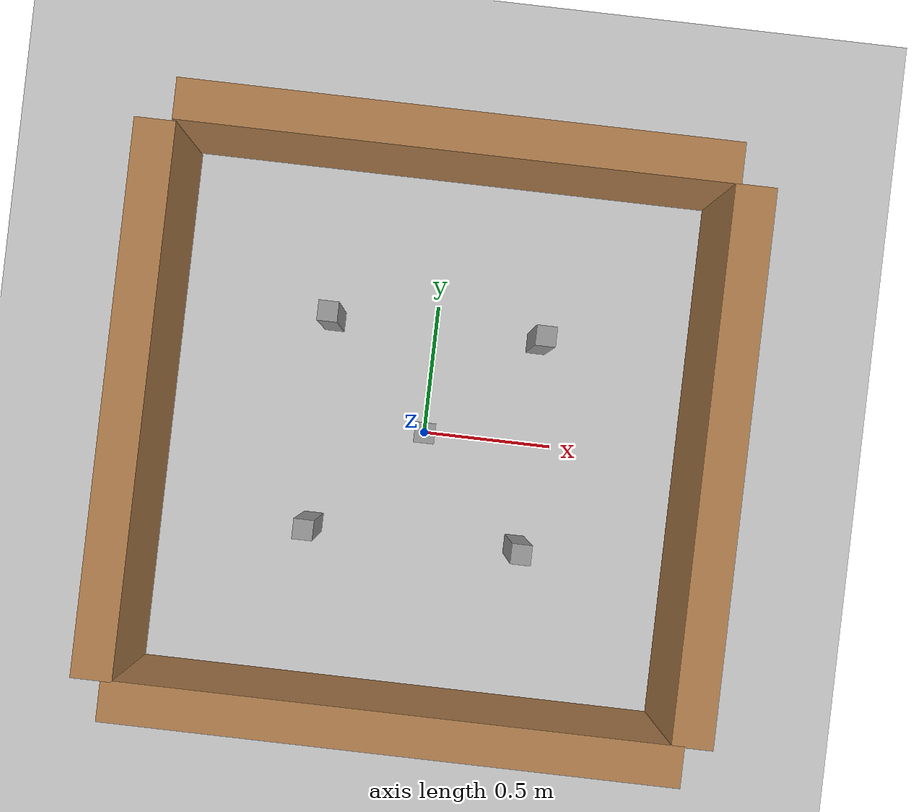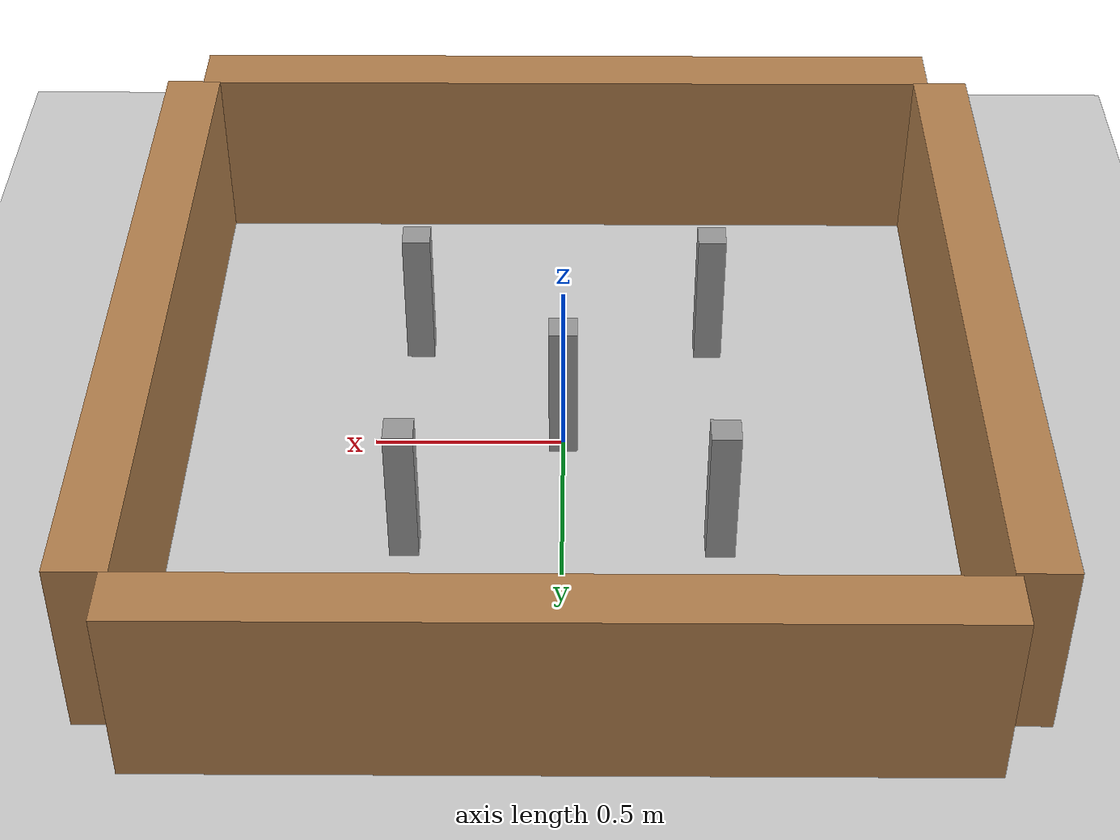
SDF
<sdf version="1.6">
 <world name="default">
  <light name="sun" type="directional">
   <pose>0 0 10 0 -0 0</pose>
   <diffuse>0.8 0.8 0.8 1</diffuse>
   <specular>0.2 0.2 0.2 1</specular>
   <attenuation>
    <range>1000</range>
    <constant>0.9</constant>
    <linear>0.01</linear>
    <quadratic>0.001</quadratic>
   </attenuation>
   <direction>-0.5 0.1 -0.9</direction>
  </light>
  <model name="ground_plane">
   <static>1</static>
   <link name="link">
    <collision name="collision">
     <geometry><plane><normal>0 0 1</normal><size>100 100</size></plane></geometry>
     <surface>
      <contact><collide_bitmask>65535</collide_bitmask></contact>
      <friction><ode><mu>100</mu><mu2>50</mu2></ode></friction>
     </surface>
    </collision>
    <visual name="visual">
     <cast_shadows>0</cast_shadows>
     <geometry><plane><normal>0 0 1</normal><size>100 100</size></plane></geometry>
     <material>
      <script><uri>file://media/materials/scripts/gazebo.material</uri><name>Gazebo/Grey</name></script>
     </material>
    </visual>
   </link>
  </model>
  <gravity>0 0 -9.8</gravity>
  <magnetic_field>6e-06 2.3e-05 -4.2e-05</magnetic_field>
  <atmosphere type="adiabatic"/>
  <physics name="default_physics" default="0" type="ode">
   <max_step_size>0.001</max_step_size>
   <real_time_factor>1</real_time_factor>
   <real_time_update_rate>1000</real_time_update_rate>
  </physics>
  <scene><ambient>0.4 0.4 0.4 1</ambient><background>0.7 0.7 0.7 1</background><shadows>1</shadows></scene>
  <audio><device>default</device></audio>
  <spherical_coordinates>
   <surface_model>EARTH_WGS84</surface_model>
   <latitude_deg>0</latitude_deg>
   <longitude_deg>0</longitude_deg>
   <elevation>0</elevation>
   <heading_deg>0</heading_deg>
  </spherical_coordinates>
  <model name="cuboid_obstacle">
   <link name="link">
    <inertial>
     <mass>1</mass>
     <inertia>
      <ixx>0.166667</ixx>
      <ixy>0</ixy>
      <ixz>0</ixz>
      <iyy>0.166667</iyy>
      <iyz>0</iyz>
      <izz>0.166667</izz>
     </inertia>
    </inertial>
    <pose>-0 -0 -0.3 0 -0 0</pose>
    <visual name="visual">
     <geometry><box><size>0.075 0.075 0.395</size></box></geometry>
     <material>
      <script><name>Gazebo/Grey</name><uri>file://media/materials/scripts/gazebo.material</uri></script>
      <shader type="vertex"><normal_map>__default__</normal_map></shader>
      <ambient>0.3 0.3 0.3 1</ambient>
      <diffuse>0.7 0.7 0.7 1</diffuse>
      <specular>0.01 0.01 0.01 1</specular>
      <emissive>0 0 0 1</emissive>
     </material>
    </visual>
    <collision name="collision">
     <geometry><box><size>0.075 0.075 0.395</size></box></geometry>
     <surface>
      <friction>
       <ode><mu>1</mu><mu2>1</mu2><fdir1>0 0 0</fdir1><slip1>0</slip1><slip2>0</slip2></ode>
       <torsional>
        <coefficient>1</coefficient>
        <patch_radius>0</patch_radius>
        <surface_radius>0</surface_radius>
        <use_patch_radius>1</use_patch_radius>
        <ode><slip>0</slip></ode>
       </torsional>
      </friction>
      <bounce><restitution_coefficient>0</restitution_coefficient><threshold>1e+06</threshold></bounce>
      <contact>
       <collide_without_contact>0</collide_without_contact>
       <collide_without_contact_bitmask>1</collide_without_contact_bitmask>
       <collide_bitmask>1</collide_bitmask>
       <ode>
        <soft_cfm>0</soft_cfm>
        <soft_erp>0.2</soft_erp>
        <kp>1e+13</kp>
        <kd>1</kd>
        <max_vel>0.01</max_vel>
        <min_depth>0</min_depth>
       </ode>
       <bullet>
        <split_impulse>1</split_impulse>
        <split_impulse_penetration_threshold>-0.01</split_impulse_penetration_threshold>
        <soft_cfm>0</soft_cfm>
        <soft_erp>0.2</soft_erp>
        <kp>1e+13</kp>
        <kd>1</kd>
       </bullet>
      </contact>
     </surface>
    </collision>
   </link>
   <link name="link_clone_1">
    <inertial>
     <mass>1</mass>
     <inertia>
      <ixx>0.166667</ixx>
      <ixy>0</ixy>
      <ixz>0</ixz>
      <iyy>0.166667</iyy>
      <iyz>0</iyz>
      <izz>0.166667</izz>
     </inertia>
    </inertial>
    <pose>-0.4 0.4 -0.299991 1e-05 -0 0</pose>
    <visual name="visual">
     <geometry><box><size>0.075 0.075 0.395</size></box></geometry>
     <material>
      <script><name>Gazebo/Grey</name><uri>file://media/materials/scripts/gazebo.material</uri></script>
      <shader type="vertex"><normal_map>__default__</normal_map></shader>
      <ambient>0.3 0.3 0.3 1</ambient>
      <diffuse>0.7 0.7 0.7 1</diffuse>
      <specular>0.01 0.01 0.01 1</specular>
      <emissive>0 0 0 1</emissive>
     </material>
    </visual>
    <collision name="collision">
     <geometry><box><size>0.075 0.075 0.395</size></box></geometry>
     <surface>
      <friction>
       <ode><mu>1</mu><mu2>1</mu2><fdir1>0 0 0</fdir1><slip1>0</slip1><slip2>0</slip2></ode>
       <torsional>
        <coefficient>1</coefficient>
        <patch_radius>0</patch_radius>
        <surface_radius>0</surface_radius>
        <use_patch_radius>1</use_patch_radius>
        <ode><slip>0</slip></ode>
       </torsional>
      </friction>
      <bounce><restitution_coefficient>0</restitution_coefficient><threshold>1e+06</threshold></bounce>
      <contact>
       <collide_without_contact>0</collide_without_contact>
       <collide_without_contact_bitmask>1</collide_without_contact_bitmask>
       <collide_bitmask>1</collide_bitmask>
       <ode>
        <soft_cfm>0</soft_cfm>
        <soft_erp>0.2</soft_erp>
        <kp>1e+13</kp>
        <kd>1</kd>
        <max_vel>0.01</max_vel>
        <min_depth>0</min_depth>
       </ode>
       <bullet>
        <split_impulse>1</split_impulse>
        <split_impulse_penetration_threshold>-0.01</split_impulse_penetration_threshold>
        <soft_cfm>0</soft_cfm>
        <soft_erp>0.2</soft_erp>
        <kp>1e+13</kp>
        <kd>1</kd>
       </bullet>
      </contact>
     </surface>
    </collision>
   </link>
   <link name="link_clone_1_clone">
    <inertial>
     <mass>1</mass>
     <inertia>
      <ixx>0.166667</ixx>
      <ixy>0</ixy>
      <ixz>0</ixz>
      <iyy>0.166667</iyy>
      <iyz>0</iyz>
      <izz>0.166667</izz>
     </inertia>
    </inertial>
    <pose>-0.4 -0.4 -0.299998 2e-05 -0 0</pose>
    <visual name="visual">
     <geometry><box><size>0.075 0.075 0.395</size></box></geometry>
     <material>
      <script><name>Gazebo/Grey</name><uri>file://media/materials/scripts/gazebo.material</uri></script>
      <shader type="vertex"><normal_map>__default__</normal_map></shader>
      <ambient>0.3 0.3 0.3 1</ambient>
      <diffuse>0.7 0.7 0.7 1</diffuse>
      <specular>0.01 0.01 0.01 1</specular>
      <emissive>0 0 0 1</emissive>
     </material>
    </visual>
    <collision name="collision">
     <geometry><box><size>0.075 0.075 0.395</size></box></geometry>
     <surface>
      <friction>
       <ode><mu>1</mu><mu2>1</mu2><fdir1>0 0 0</fdir1><slip1>0</slip1><slip2>0</slip2></ode>
       <torsional>
        <coefficient>1</coefficient>
        <patch_radius>0</patch_radius>
        <surface_radius>0</surface_radius>
        <use_patch_radius>1</use_patch_radius>
        <ode><slip>0</slip></ode>
       </torsional>
      </friction>
      <bounce><restitution_coefficient>0</restitution_coefficient><threshold>1e+06</threshold></bounce>
      <contact>
       <collide_without_contact>0</collide_without_contact>
       <collide_without_contact_bitmask>1</collide_without_contact_bitmask>
       <collide_bitmask>1</collide_bitmask>
       <ode>
        <soft_cfm>0</soft_cfm>
        <soft_erp>0.2</soft_erp>
        <kp>1e+13</kp>
        <kd>1</kd>
        <max_vel>0.01</max_vel>
        <min_depth>0</min_depth>
       </ode>
       <bullet>
        <split_impulse>1</split_impulse>
        <split_impulse_penetration_threshold>-0.01</split_impulse_penetration_threshold>
        <soft_cfm>0</soft_cfm>
        <soft_erp>0.2</soft_erp>
        <kp>1e+13</kp>
        <kd>1</kd>
       </bullet>
      </contact>
     </surface>
    </collision>
   </link>
   <link name="link_clone_1_clone_0">
    <inertial>
     <mass>1</mass>
     <inertia>
      <ixx>0.166667</ixx>
      <ixy>0</ixy>
      <ixz>0</ixz>
      <iyy>0.166667</iyy>
      <iyz>0</iyz>
      <izz>0.166667</izz>
     </inertia>
    </inertial>
    <pose>0.4 -0.4 -0.299995 2e-05 -0 0</pose>
    <visual name="visual">
     <geometry><box><size>0.075 0.075 0.395</size></box></geometry>
     <material>
      <script><name>Gazebo/Grey</name><uri>file://media/materials/scripts/gazebo.material</uri></script>
      <shader type="vertex"><normal_map>__default__</normal_map></shader>
      <ambient>0.3 0.3 0.3 1</ambient>
      <diffuse>0.7 0.7 0.7 1</diffuse>
      <specular>0.01 0.01 0.01 1</specular>
      <emissive>0 0 0 1</emissive>
     </material>
    </visual>
    <collision name="collision">
     <geometry><box><size>0.075 0.075 0.395</size></box></geometry>
     <surface>
      <friction>
       <ode><mu>1</mu><mu2>1</mu2><fdir1>0 0 0</fdir1><slip1>0</slip1><slip2>0</slip2></ode>
       <torsional>
        <coefficient>1</coefficient>
        <patch_radius>0</patch_radius>
        <surface_radius>0</surface_radius>
        <use_patch_radius>1</use_patch_radius>
        <ode><slip>0</slip></ode>
       </torsional>
      </friction>
      <bounce><restitution_coefficient>0</restitution_coefficient><threshold>1e+06</threshold></bounce>
      <contact>
       <collide_without_contact>0</collide_without_contact>
       <collide_without_contact_bitmask>1</collide_without_contact_bitmask>
       <collide_bitmask>1</collide_bitmask>
       <ode>
        <soft_cfm>0</soft_cfm>
        <soft_erp>0.2</soft_erp>
        <kp>1e+13</kp>
        <kd>1</kd>
        <max_vel>0.01</max_vel>
        <min_depth>0</min_depth>
       </ode>
       <bullet>
        <split_impulse>1</split_impulse>
        <split_impulse_penetration_threshold>-0.01</split_impulse_penetration_threshold>
        <soft_cfm>0</soft_cfm>
        <soft_erp>0.2</soft_erp>
        <kp>1e+13</kp>
        <kd>1</kd>
       </bullet>
      </contact>
     </surface>
    </collision>
   </link>
   <link name="link_clone_1_clone_1">
    <inertial>
     <mass>1</mass>
     <inertia>
      <ixx>0.166667</ixx>
      <ixy>0</ixy>
      <ixz>0</ixz>
      <iyy>0.166667</iyy>
      <iyz>0</iyz>
      <izz>0.166667</izz>
     </inertia>
    </inertial>
    <pose>0.4 0.4 -0.299986 2e-05 -0 0</pose>
    <visual name="visual">
     <geometry><box><size>0.075 0.075 0.395</size></box></geometry>
     <material>
      <script><name>Gazebo/Grey</name><uri>file://media/materials/scripts/gazebo.material</uri></script>
      <shader type="vertex"><normal_map>__default__</normal_map></shader>
      <ambient>0.3 0.3 0.3 1</ambient>
      <diffuse>0.7 0.7 0.7 1</diffuse>
      <specular>0.01 0.01 0.01 1</specular>
      <emissive>0 0 0 1</emissive>
     </material>
    </visual>
    <collision name="collision">
     <geometry><box><size>0.075 0.075 0.395</size></box></geometry>
     <surface>
      <friction>
       <ode><mu>1</mu><mu2>1</mu2><fdir1>0 0 0</fdir1><slip1>0</slip1><slip2>0</slip2></ode>
       <torsional>
        <coefficient>1</coefficient>
        <patch_radius>0</patch_radius>
        <surface_radius>0</surface_radius>
        <use_patch_radius>1</use_patch_radius>
        <ode><slip>0</slip></ode>
       </torsional>
      </friction>
      <bounce><restitution_coefficient>0</restitution_coefficient><threshold>1e+06</threshold></bounce>
      <contact>
       <collide_without_contact>0</collide_without_contact>
       <collide_without_contact_bitmask>1</collide_without_contact_bitmask>
       <collide_bitmask>1</collide_bitmask>
       <ode>
        <soft_cfm>0</soft_cfm>
        <soft_erp>0.2</soft_erp>
        <kp>1e+13</kp>
        <kd>1</kd>
        <max_vel>0.01</max_vel>
        <min_depth>0</min_depth>
       </ode>
       <bullet>
        <split_impulse>1</split_impulse>
        <split_impulse_penetration_threshold>-0.01</split_impulse_penetration_threshold>
        <soft_cfm>0</soft_cfm>
        <soft_erp>0.2</soft_erp>
        <kp>1e+13</kp>
        <kd>1</kd>
       </bullet>
      </contact>
     </surface>
    </collision>
   </link>
   <static>0</static>
   <pose>0 5e-06 0.499995 -1e-05 0 0</pose>
  </model>
  <model name="turtlebot3_square_smaller">
   <link name="Wall_0">
    <pose>0 1.07852 0 0 -0 0</pose>
    <inertial>
     <mass>0.508842</mass>
     <inertia>
      <ixx>0.0115549</ixx>
      <ixy>0</ixy>
      <ixz>0</ixz>
      <iyy>0.186256</iyy>
      <iyz>0</iyz>
      <izz>0.176609</izz>
     </inertia>
    </inertial>
    <visual name="Wall_0_Visual">
     <pose>0 0 0.25 0 -0 0</pose>
     <geometry><box><size>2.0353 0.15 0.5</size></box></geometry>
     <material>
      <script><uri>file://media/materials/scripts/gazebo.material</uri><name>Gazebo/Wood</name></script>
      <ambient>1 1 1 1</ambient>
      <shader type="vertex"><normal_map>__default__</normal_map></shader>
      <diffuse>1 1 1 1</diffuse>
      <specular>0.2 0.2 0.2 1</specular>
      <emissive>0 0 0 1</emissive>
     </material>
    </visual>
    <collision name="Wall_0_Collision">
     <pose>0 0 0.25 0 -0 0</pose>
     <geometry><box><size>2.0353 0.15 0.5</size></box></geometry>
     <surface>
      <friction>
       <ode><mu>1</mu><mu2>1</mu2><fdir1>0 0 0</fdir1><slip1>0</slip1><slip2>0</slip2></ode>
       <torsional>
        <coefficient>1</coefficient>
        <patch_radius>0</patch_radius>
        <surface_radius>0</surface_radius>
        <use_patch_radius>1</use_patch_radius>
        <ode><slip>0</slip></ode>
       </torsional>
      </friction>
      <bounce><restitution_coefficient>0</restitution_coefficient><threshold>1e+06</threshold></bounce>
      <contact>
       <collide_without_contact>0</collide_without_contact>
       <collide_without_contact_bitmask>1</collide_without_contact_bitmask>
       <collide_bitmask>1</collide_bitmask>
       <ode>
        <soft_cfm>0</soft_cfm>
        <soft_erp>0.2</soft_erp>
        <kp>1e+13</kp>
        <kd>1</kd>
        <max_vel>0.01</max_vel>
        <min_depth>0</min_depth>
       </ode>
       <bullet>
        <split_impulse>1</split_impulse>
        <split_impulse_penetration_threshold>-0.01</split_impulse_penetration_threshold>
        <soft_cfm>0</soft_cfm>
        <soft_erp>0.2</soft_erp>
        <kp>1e+13</kp>
        <kd>1</kd>
       </bullet>
      </contact>
     </surface>
    </collision>
   </link>
   <link name="Wall_2">
    <pose>-1.07729 -0.00439 0 0 0 -1.5708</pose>
    <inertial>
     <mass>0.500872</mass>
     <inertia>
      <ixx>0.011374</ixx>
      <ixy>0</ixy>
      <ixz>0</ixz>
      <iyy>0.177976</iyy>
      <iyz>0</iyz>
      <izz>0.16848</izz>
     </inertia>
    </inertial>
    <visual name="Wall_2_Visual">
     <pose>0 0 0.25 0 -0 0</pose>
     <geometry><box><size>2.00349 0.15 0.5</size></box></geometry>
     <material>
      <script><uri>file://media/materials/scripts/gazebo.material</uri><name>Gazebo/Wood</name></script>
      <ambient>1 1 1 1</ambient>
      <shader type="vertex"><normal_map>__default__</normal_map></shader>
      <diffuse>1 1 1 1</diffuse>
      <specular>0.2 0.2 0.2 1</specular>
      <emissive>0 0 0 1</emissive>
     </material>
    </visual>
    <collision name="Wall_2_Collision">
     <pose>0 0 0.25 0 -0 0</pose>
     <geometry><box><size>2.00349 0.15 0.5</size></box></geometry>
     <surface>
      <friction>
       <ode><mu>1</mu><mu2>1</mu2><fdir1>0 0 0</fdir1><slip1>0</slip1><slip2>0</slip2></ode>
       <torsional>
        <coefficient>1</coefficient>
        <patch_radius>0</patch_radius>
        <surface_radius>0</surface_radius>
        <use_patch_radius>1</use_patch_radius>
        <ode><slip>0</slip></ode>
       </torsional>
      </friction>
      <bounce><restitution_coefficient>0</restitution_coefficient><threshold>1e+06</threshold></bounce>
      <contact>
       <collide_without_contact>0</collide_without_contact>
       <collide_without_contact_bitmask>1</collide_without_contact_bitmask>
       <collide_bitmask>1</collide_bitmask>
       <ode>
        <soft_cfm>0</soft_cfm>
        <soft_erp>0.2</soft_erp>
        <kp>1e+13</kp>
        <kd>1</kd>
        <max_vel>0.01</max_vel>
        <min_depth>0</min_depth>
       </ode>
       <bullet>
        <split_impulse>1</split_impulse>
        <split_impulse_penetration_threshold>-0.01</split_impulse_penetration_threshold>
        <soft_cfm>0</soft_cfm>
        <soft_erp>0.2</soft_erp>
        <kp>1e+13</kp>
        <kd>1</kd>
       </bullet>
      </contact>
     </surface>
    </collision>
   </link>
   <link name="Wall_3">
    <pose>0 -1.07552 0 0 -0 0</pose>
    <inertial>
     <mass>0.522028</mass>
     <inertia>
      <ixx>0.0118544</ixx>
      <ixy>0</ixy>
      <ixz>0</ixz>
      <iyy>0.200553</iyy>
      <iyz>0</iyz>
      <izz>0.190656</izz>
     </inertia>
    </inertial>
    <visual name="Wall_3_Visual">
     <pose>0 0 0.25 0 -0 0</pose>
     <geometry><box><size>2.0881 0.15 0.5</size></box></geometry>
     <material>
      <script><uri>file://media/materials/scripts/gazebo.material</uri><name>Gazebo/Wood</name></script>
      <ambient>1 1 1 1</ambient>
      <shader type="vertex"><normal_map>__default__</normal_map></shader>
      <diffuse>1 1 1 1</diffuse>
      <specular>0.2 0.2 0.2 1</specular>
      <emissive>0 0 0 1</emissive>
     </material>
    </visual>
    <collision name="Wall_3_Collision">
     <pose>0 0 0.25 0 -0 0</pose>
     <geometry><box><size>2.0881 0.15 0.5</size></box></geometry>
     <surface>
      <friction>
       <ode><mu>1</mu><mu2>1</mu2><fdir1>0 0 0</fdir1><slip1>0</slip1><slip2>0</slip2></ode>
       <torsional>
        <coefficient>1</coefficient>
        <patch_radius>0</patch_radius>
        <surface_radius>0</surface_radius>
        <use_patch_radius>1</use_patch_radius>
        <ode><slip>0</slip></ode>
       </torsional>
      </friction>
      <bounce><restitution_coefficient>0</restitution_coefficient><threshold>1e+06</threshold></bounce>
      <contact>
       <collide_without_contact>0</collide_without_contact>
       <collide_without_contact_bitmask>1</collide_without_contact_bitmask>
       <collide_bitmask>1</collide_bitmask>
       <ode>
        <soft_cfm>0</soft_cfm>
        <soft_erp>0.2</soft_erp>
        <kp>1e+13</kp>
        <kd>1</kd>
        <max_vel>0.01</max_vel>
        <min_depth>0</min_depth>
       </ode>
       <bullet>
        <split_impulse>1</split_impulse>
        <split_impulse_penetration_threshold>-0.01</split_impulse_penetration_threshold>
        <soft_cfm>0</soft_cfm>
        <soft_erp>0.2</soft_erp>
        <kp>1e+13</kp>
        <kd>1</kd>
       </bullet>
      </contact>
     </surface>
    </collision>
   </link>
   <link name="Wall_4">
    <pose>1.07114 1e-06 -0 0 -0 1.5708</pose>
    <inertial>
     <mass>0.502412</mass>
     <inertia>
      <ixx>0.0114089</ixx>
      <ixy>0</ixy>
      <ixz>0</ixz>
      <iyy>0.179555</iyy>
      <iyz>0</iyz>
      <izz>0.170031</izz>
     </inertia>
    </inertial>
    <visual name="Wall_4_Visual">
     <pose>0 0 0.25 0 -0 0</pose>
     <geometry><box><size>2.00964 0.15 0.5</size></box></geometry>
     <material>
      <script><uri>file://media/materials/scripts/gazebo.material</uri><name>Gazebo/Wood</name></script>
      <ambient>1 1 1 1</ambient>
      <shader type="vertex"><normal_map>__default__</normal_map></shader>
      <diffuse>1 1 1 1</diffuse>
      <specular>0.2 0.2 0.2 1</specular>
      <emissive>0 0 0 1</emissive>
     </material>
    </visual>
    <collision name="Wall_4_Collision">
     <pose>0 0 0.25 0 -0 0</pose>
     <geometry><box><size>2.00964 0.15 0.5</size></box></geometry>
     <surface>
      <friction>
       <ode><mu>1</mu><mu2>1</mu2><fdir1>0 0 0</fdir1><slip1>0</slip1><slip2>0</slip2></ode>
       <torsional>
        <coefficient>1</coefficient>
        <patch_radius>0</patch_radius>
        <surface_radius>0</surface_radius>
        <use_patch_radius>1</use_patch_radius>
        <ode><slip>0</slip></ode>
       </torsional>
      </friction>
      <bounce><restitution_coefficient>0</restitution_coefficient><threshold>1e+06</threshold></bounce>
      <contact>
       <collide_without_contact>0</collide_without_contact>
       <collide_without_contact_bitmask>1</collide_without_contact_bitmask>
       <collide_bitmask>1</collide_bitmask>
       <ode>
        <soft_cfm>0</soft_cfm>
        <soft_erp>0.2</soft_erp>
        <kp>1e+13</kp>
        <kd>1</kd>
        <max_vel>0.01</max_vel>
        <min_depth>0</min_depth>
       </ode>
       <bullet>
        <split_impulse>1</split_impulse>
        <split_impulse_penetration_threshold>-0.01</split_impulse_penetration_threshold>
        <soft_cfm>0</soft_cfm>
        <soft_erp>0.2</soft_erp>
        <kp>1e+13</kp>
        <kd>1</kd>
       </bullet>
      </contact>
     </surface>
    </collision>
   </link>
   <static>1</static>
  </model>
 </world>
</sdf>
